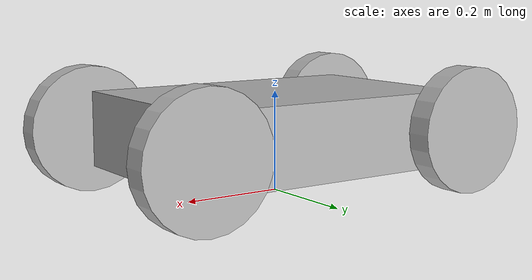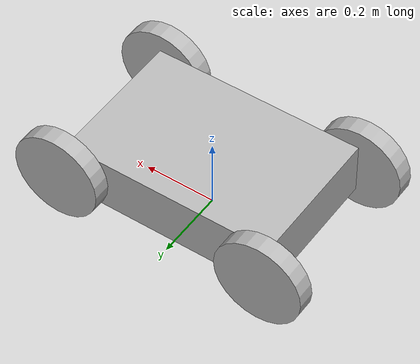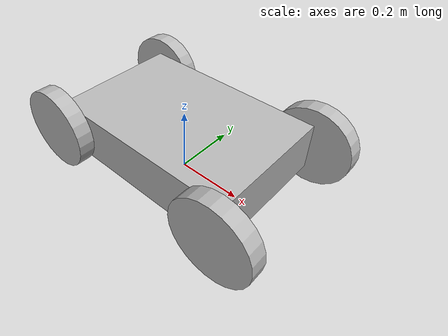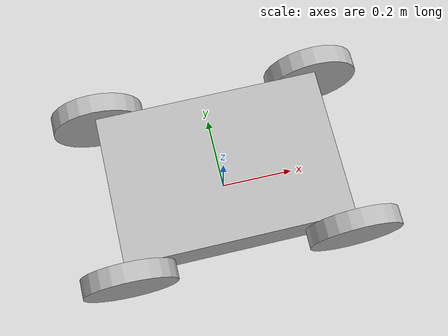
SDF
<?xml version='1.0'?>
<sdf version='1.4'>
  <model name="rover">
    <static>false</static>
    <link name='chassis'>
      <pose>0 0 .125 0 0 0</pose>

      <collision name='collision'>
        <geometry>
          <box>
            <size>.6 .4 .15</size>
          </box>
        </geometry>
      </collision>

      <visual name='visual'>
        <geometry>
          <box>
            <size>.6 .4 .15</size>
          </box>
        </geometry>
      </visual>
    </link>

    <link name="left_wheel_front">
      <pose>-0.3 0.225 0.125 0 1.5707 1.5707</pose>
      <collision name="collision">
        <geometry>
          <cylinder>
            <radius>.125</radius>
            <length>.05</length>
          </cylinder>
        </geometry>
      </collision>
      <visual name="visual">
        <geometry>
          <cylinder>
            <radius>.125</radius>
            <length>.05</length>
          </cylinder>
        </geometry>
      </visual>
    </link>

    <link name="left_wheel_back">
      <pose>0.3 0.225 0.125 0 1.5707 1.5707</pose>
      <collision name="collision">
        <geometry>
          <cylinder>
            <radius>.125</radius>
            <length>.05</length>
          </cylinder>
        </geometry>
      </collision>
      <visual name="visual">
        <geometry>
          <cylinder>
            <radius>.125</radius>
            <length>.05</length>
          </cylinder>
        </geometry>
      </visual>
    </link>

    <link name="right_wheel_front">
      <pose>-0.3 -0.225 0.125 0 1.5707 1.5707</pose>
      <collision name="collision">
        <geometry>
          <cylinder>
            <radius>.125</radius>
            <length>.05</length>
          </cylinder>
        </geometry>
      </collision>
      <visual name="visual">
        <geometry>
          <cylinder>
            <radius>.125</radius>
            <length>.05</length>
          </cylinder>
        </geometry>
      </visual>
    </link>

    <link name="right_wheel_back">
      <pose>0.3 -0.225 0.125 0 1.5707 1.5707</pose>
      <collision name="collision">
        <geometry>
          <cylinder>
            <radius>.125</radius>
            <length>.05</length>
          </cylinder>
        </geometry>
      </collision>
      <visual name="visual">
        <geometry>
          <cylinder>
            <radius>.125</radius>
            <length>.05</length>
          </cylinder>
        </geometry>
      </visual>
    </link>

    <joint type="revolute" name="left_wheel_back_hinge">
      <pose>0 0 -0.03 0 0 0</pose>
      <child>left_wheel_back</child>
      <parent>chassis</parent>
      <axis>
        <xyz>0 1 0</xyz>
      </axis>
    </joint>

    <joint type="revolute" name="left_wheel_front_hinge">
      <pose>0 0 -0.03 0 0 0</pose>
      <child>left_wheel_front</child>
      <parent>chassis</parent>
      <axis>
        <xyz>0 1 0</xyz>
      </axis>
    </joint>

    <joint type="revolute" name="right_wheel_back_hinge">
      <pose>0 0 0.03 0 0 0</pose>
      <child>right_wheel_back</child>
      <parent>chassis</parent>
      <axis>
        <xyz>0 1 0</xyz>
      </axis>
    </joint>

    <joint type="revolute" name="right_wheel__front_hinge">
      <pose>0 0 0.03 0 0 0</pose>
      <child>right_wheel_front</child>
      <parent>chassis</parent>
      <axis>
        <xyz>0 1 0</xyz>
      </axis>
    </joint>
  </model>
</sdf>
